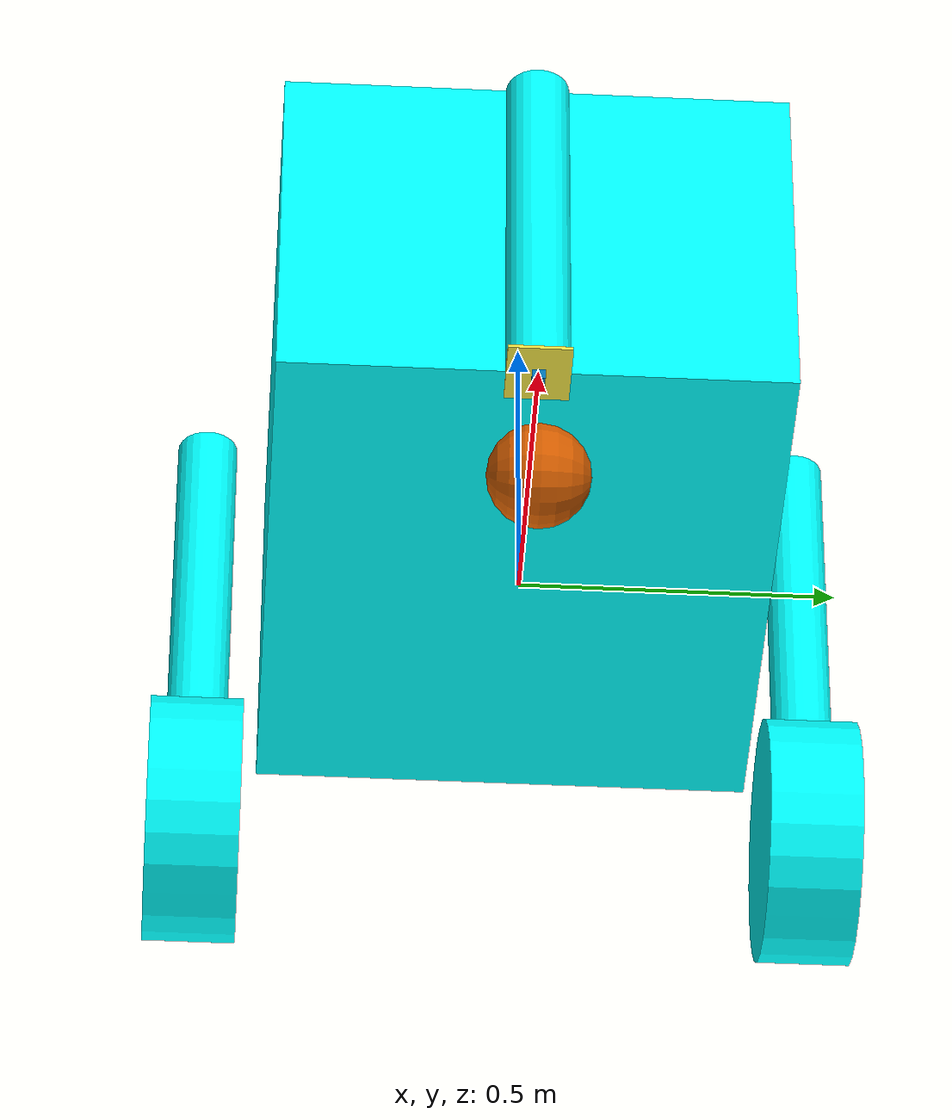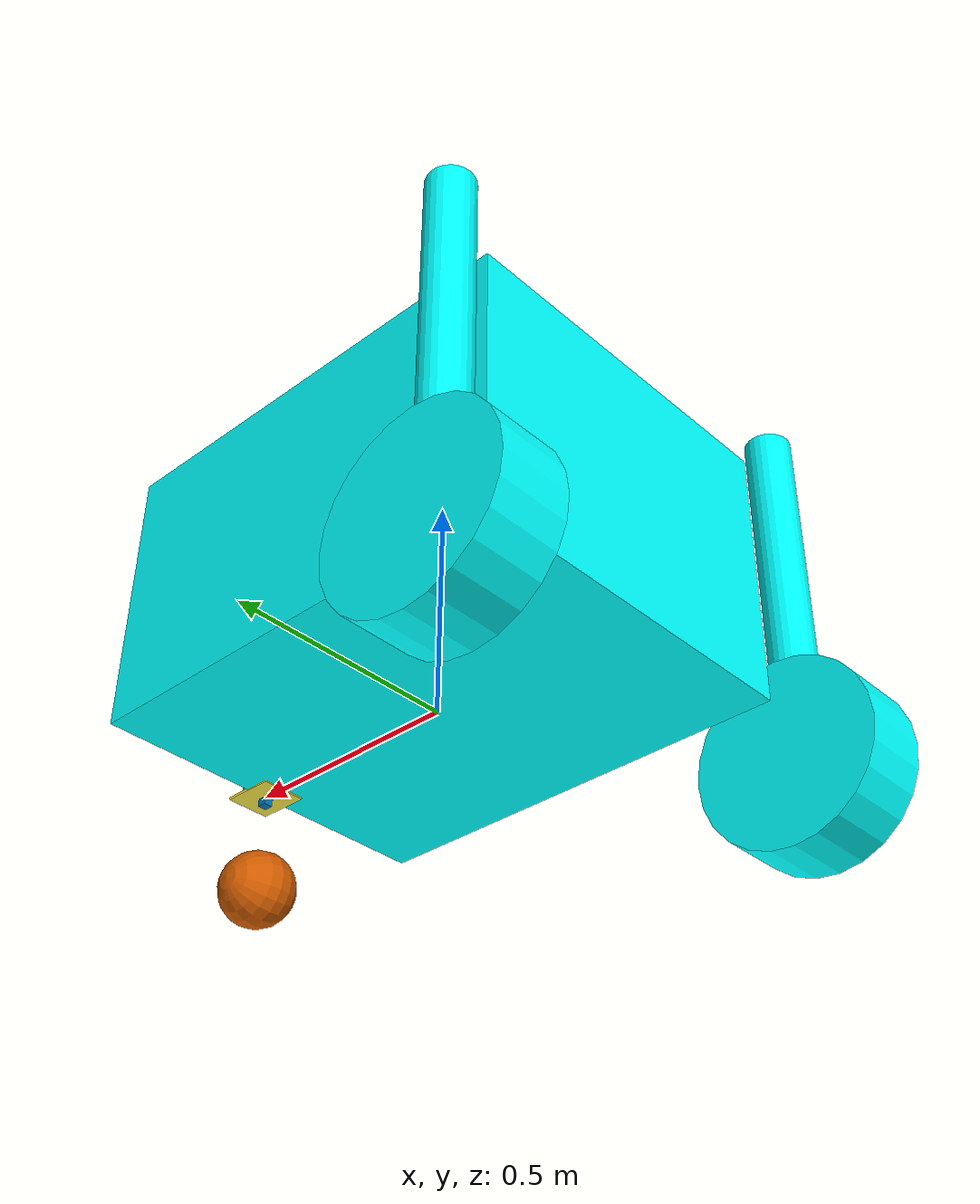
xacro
<?xml version="1.0"?>
<robot xmlns:xacro="http://ros.org/wiki/xacro" name="cyclair_frontsteer">

 <!-- Rover should be facing X axis -->

  <!--Despite the name, this is actually gray plastic.-->
  <material name="grey_plastic">
    <color rgba="0 1.0 1.0 1.0"/>
  </material>

  <material name="black_plastic">
    <color rgba="0 1.0 1.0 1.0"/>
  </material>

  <material name="tire_rubber">
    <color rgba="0 1.0 1.0 1.0"/>
  </material>

  <!-- Main robot body-->
  <link name="base_footprint"/>

  <joint name="footprint_mainbox" type="fixed">
    <parent link="base_footprint"/>
    <child link="main_box"/>
    <origin rpy="0 0 0" xyz="0 0 0.3"/>
    <axis rpy="0 0 0" xyz="0 0 1"/>
  </joint>

  <link name="main_box">
    <visual>
      <geometry>
        <box size="1 0.8 0.6"/>
      </geometry>
      <material name="black_plastic"/>
    </visual>
    <collision>
        <geometry>
            <!-- The to-be-commented XML block goes here. -->
            <box size="1 0.8 0.6"/>
        </geometry>
    </collision>
    <inertial>
      <mass value="50"/>
      <inertia ixx="1.0" ixy="0.0" ixz="0.0" iyy="1.0" iyz="0.0" izz="1.0"/>
    </inertial>
  </link>

<!--CASTE FRONT WHEEL -->
  <link name="fc_leg">
    <visual>
      <geometry>
        <cylinder length="0.6" radius="0.05"/>
      </geometry>
      <material name="black_plastic"/>
    </visual>
    <collision>
      <geometry>
        <cylinder length="0.6" radius="0.05"/>
       </geometry>
    </collision>
    <inertial>
      <mass value="6"/>
      <inertia ixx="1.0" ixy="0.0" ixz="0.0" iyy="1.0" iyz="0.0" izz="1.0"/>
    </inertial>
  </link>

  <gazebo reference="fc_leg">
    <turnGravityOff>false</turnGravityOff>
  </gazebo>

  <joint name="main_box_to_fc_leg" type="fixed">
    <parent link="main_box"/>
    <child link="fc_leg"/>
    <origin rpy="0 0 0" xyz="0.5 0.0 -0.0"/>
    <axis rpy="0 0 0" xyz="0 0 1"/>
    <!--limit lower="-0.5" upper="0.5" effort="10" velocity="0.5"/-->
  </joint>

  <!-- Castor cylindrical wheel with mount -->
  <link name="castor_mount_link">
    <visual>
      <geometry>
        <box size="0.1145 0.1 0.0057"/>
      </geometry>
    </visual>
    <collision>
        <geometry>
          <box size="0.1145 0.1 0.0057"/>
        </geometry>
    </collision>
    <inertial>
      <mass value="0.1"/>
      <inertia ixx="1.0e-5" ixy="0.0" ixz="0.0" iyy="1.0e-5" iyz="0.0" izz="1.0e-5"/>
    </inertial>
  </link>

  <gazebo reference="castor_mount_link">

  </gazebo>

  <joint name="fc_leg_to_castor_mount" type="fixed">
    <parent link="fc_leg"/>
    <child link="castor_mount_link"/>
    <origin rpy="0 0 0" xyz="0.0 0.0 -0.3"/>
    <axis rpy="0 0 0" xyz="0 0 1"/>
    <!--limit lower="-0.5" upper="0.5" effort="10" velocity="0.5"/-->
  </joint>

  <link name="castor_dummy_link">
    <visual>
      <geometry>
        <box size="0.02 0.02 0.02"/>
      </geometry>
    </visual>
    <collision>
      <geometry>
        <box size="0.02 0.02 0.02"/>
      </geometry>
    </collision>
    <inertial>
      <mass value="1.5"/>
      <inertia ixx="1.0e-4" ixy="0.0" ixz="0.0" iyy="1.0e-4" iyz="0.0" izz="1.0e-4"/>
    </inertial>
  </link>

  <gazebo reference="castor_dummy_link">

  </gazebo>

  <joint name="castor_mount_to_dummy_link" type="fixed">
    <parent link="castor_mount_link"/>
    <child link="castor_dummy_link"/>
    <origin rpy="0 0 0" xyz="0.0 0.0 -0.01"/>
    <axis rpy="0 0 0" xyz="0 0 1"/>
    <!--limit lower="-0.5" upper="0.5" effort="10" velocity="0.5"/-->
  </joint>

  <link name="castor_wheel_link">
    <visual>
      <geometry>
        <sphere radius="0.08"/>
      </geometry>
      <origin rpy="1.57079632679 0 0" xyz="0 0 0"/>
    </visual>
    <collision>
      <geometry>
        <sphere radius="0.08"/>
      </geometry>
      <origin rpy="1.57079632679 0 0" xyz="0 0 0"/>
    </collision>
    <inertial>
      <mass value="1.5"/>
      <inertia ixx="1.0e-4" ixy="0.0" ixz="0.0" iyy="1.0e-4" iyz="0.0" izz="1.0e-4"/>
    </inertial>
  </link>

  <gazebo reference="castor_wheel_link">
  </gazebo>

  <joint name="castor_dummy_to_wheel_link" type="continuous">
    <parent link="castor_dummy_link"/>
    <child link="castor_wheel_link"/>
    <origin rpy="0 0 0" xyz="-0.0 0.0 -0.2"/>
    <axis rpy="0 0 0" xyz="0 1 0"/>
  </joint>

<!-- END of Castor wheel configuration -->

<!-- BACK STEERING LEFT LEG ===================================================== -->
  <link name="bl_leg">
    <visual>
      <geometry>
        <cylinder length="0.6" radius="0.05"/>
      </geometry>
      <material name="black_plastic"/>
    </visual>
    <collision>
        <geometry>
            <cylinder length="0.6" radius="0.05"/>
        </geometry>
    </collision>
    <inertial>
      <mass value="6"/>
      <inertia ixx="1.0" ixy="0.0" ixz="0.0" iyy="1.0" iyz="0.0" izz="1.0"/>
    </inertial>
  </link>

  <joint name="main_box_to_bl_leg" type="fixed">
    <parent link="main_box"/>
    <child link="bl_leg"/>
    <origin rpy="0 0 0" xyz="-0.5 0.5 0.1"/>
    <axis rpy="0 0 0" xyz="0 0 1"/>
    <!--limit lower="-0.5" upper="0.5" effort="10" velocity="0.5"/-->
  </joint>

  <link name="wheel_bl">
    <visual>
      <geometry>
        <cylinder length="0.15" radius="0.2"/>
      </geometry>
      <material name="tire_rubber"/>
    </visual>
    <collision>
        <geometry>
           <cylinder length="0.15" radius="0.2"/>
        </geometry>
    </collision>
    <inertial>
      <mass value="6"/>
      <inertia ixx="1.0" ixy="0.0" ixz="0.0" iyy="1.0" iyz="0.0" izz="1.0"/>
    </inertial>
  </link>

  <joint name="bl_leg_to_wheel_bl" type="continuous">
    <parent link="bl_leg"/>
    <child link="wheel_bl"/>
    <origin rpy="0 1.5707 1.5707" xyz="0.0 -0.0 -0.5"/>
    <axis rpy="0 0 0" xyz="0 0 1"/>
    <!--limit lower="0" upper="0" effort="10000" velocity="1"/-->
  </joint>

<!-- BACK STEERING RIGHT LEG ====================================================-->
  <link name="br_leg">
    <visual>
      <geometry>
        <cylinder length="0.6" radius="0.05"/>
      </geometry>
      <material name="black_plastic"/>
    </visual>
    <collision>
        <geometry>
            <cylinder length="0.6" radius="0.05"/>
        </geometry>
    </collision>
    <inertial>
      <mass value="6"/>
      <inertia ixx="1.0" ixy="0.0" ixz="0.0" iyy="1.0" iyz="0.0" izz="1.0"/>
    </inertial>
  </link>

  <joint name="main_box_to_br_leg" type="fixed">
    <parent link="main_box"/>
    <child link="br_leg"/>
    <origin rpy="0 0 0" xyz="-0.5 -0.5 0.1"/>
    <axis rpy="0 0 0" xyz="0 0 1"/>
    <!--limit lower="-0.5" upper="0.5" effort="10" velocity="0.5"/-->
  </joint>

  <link name="wheel_br">
    <visual>
      <geometry>
        <cylinder length="0.15" radius="0.2"/>
      </geometry>
      <material name="tire_rubber"/>
    </visual>
    <collision>
        <geometry>
           <cylinder length="0.15" radius="0.2"/>
        </geometry>
    </collision>
    <inertial>
      <mass value="6"/>
      <inertia ixx="1.0" ixy="0.0" ixz="0.0" iyy="1.0" iyz="0.0" izz="1.0"/>
    </inertial>
  </link>

  <joint name="br_leg_to_wheel_br" type="continuous">
    <parent link="br_leg"/>
    <child link="wheel_br"/>
    <origin rpy="0 1.5707 1.5707" xyz="0.0 0.0 -0.5"/>
    <axis rpy="0 0 0" xyz="0 0 1"/>
    <!--limit lower="0" upper="0" effort="10000" velocity="1"/-->
  </joint>

<!-- IMU LINK -->
  <link name="imu_link">
    <visual>
      <geometry>
        <box size="0.1 0.1 0.01"/>
      </geometry>
    </visual>
    <collision>
      <geometry>
        <box size="0.1 0.1 0.01"/>
      </geometry>
    </collision>
    <inertial>
      <mass value="0.05"/>
      <inertia ixx="1.0e-5" ixy="0.0" ixz="0.0" iyy="1.0e-5" iyz="0.0" izz="1.0e-5"/>
    </inertial>
  </link>

  <joint name="imu_to_mainbox" type="fixed">
    <parent link="main_box"/>
    <child link="imu_link"/>
    <origin rpy="0 0 0" xyz="0 0 0.3005"/>
    <axis rpy="0 0 0" xyz="0 0 1"/>
  </joint>

  <!--TRANSMISSION OF THE WHEEL JOINTS-->
  <!-- Transmission is important to link the joints and the controller -->
  <!-- Transmission of front right wheel -->

  <!-- BACK DRIVES-->
  <!-- Transmission of back right wheel -->
  <transmission name="br_leg_to_wheel_br_trans">
    <type>transmission_interface/SimpleTransmission</type>
    <joint name="br_leg_to_wheel_br">
        <hardwareInterface>hardware_interface/EffortJointInterface</hardwareInterface>
    </joint>
    <actuator name="br_leg_to_wheel_br_motor">
      <hardwareInterface>hardware_interface/EffortJointInterface</hardwareInterface>
      <mechanicalReduction>1</mechanicalReduction>
    </actuator>
  </transmission>
  <!-- Transmission of back left wheel -->
  <transmission name="bl_leg_to_wheel_bl_trans">
    <type>transmission_interface/SimpleTransmission</type>
    <joint name="bl_leg_to_wheel_bl">
        <hardwareInterface>hardware_interface/EffortJointInterface</hardwareInterface>
    </joint>
    <actuator name="bl_leg_to_wheel_bl_motor">
      <hardwareInterface>hardware_interface/EffortJointInterface</hardwareInterface>
      <mechanicalReduction>1</mechanicalReduction>
    </actuator>
  </transmission>

</robot>
